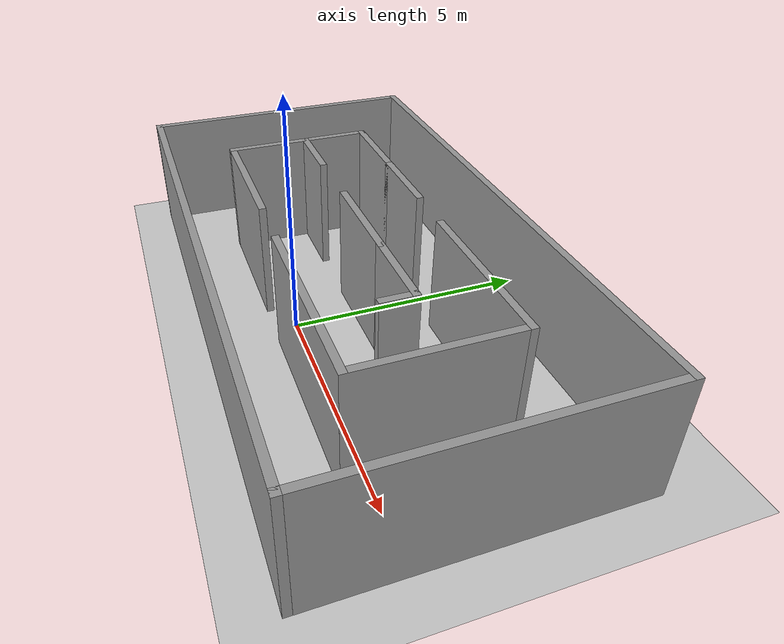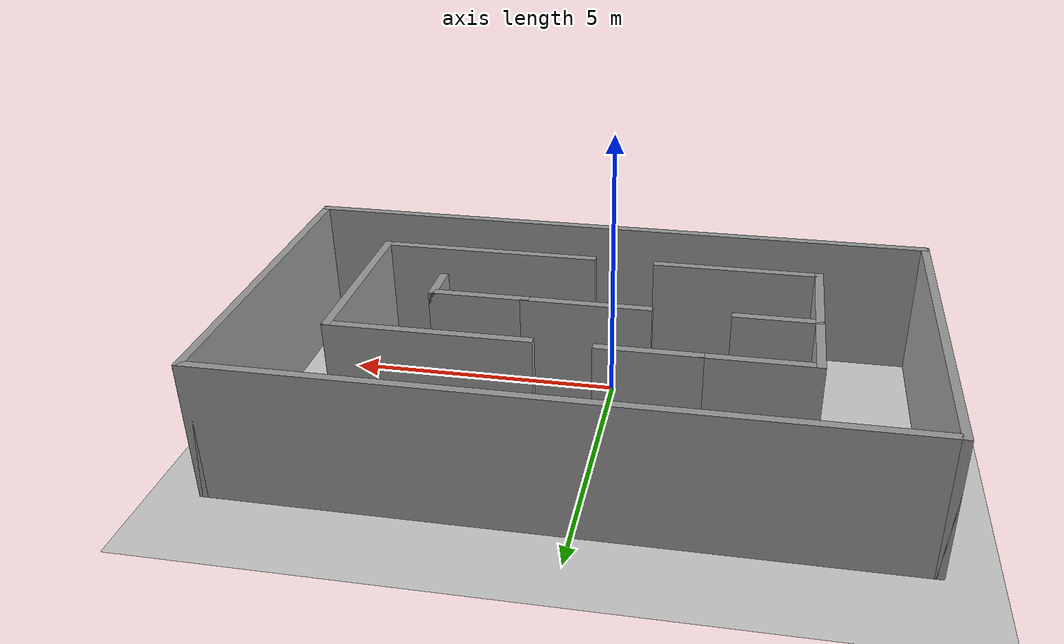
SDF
<sdf version="1.7">
 <world name="default">
  <light name="sun" type="directional">
   <pose>0 0 10 0 -0 0</pose>
   <diffuse>0.8 0.8 0.8 1</diffuse>
   <specular>0.2 0.2 0.2 1</specular>
   <attenuation>
    <range>1000</range>
    <constant>0.9</constant>
    <linear>0.01</linear>
    <quadratic>0.001</quadratic>
   </attenuation>
   <direction>-0.5 0.1 -0.9</direction>
   <spot><inner_angle>0</inner_angle><outer_angle>0</outer_angle><falloff>0</falloff></spot>
  </light>
  <model name="ground_plane">
   <static>1</static>
   <link name="link">
    <collision name="collision">
     <geometry><plane><normal>0 0 1</normal><size>100 100</size></plane></geometry>
     <surface>
      <contact><collide_bitmask>65535</collide_bitmask></contact>
      <friction><ode><mu>100</mu><mu2>50</mu2></ode></friction>
     </surface>
    </collision>
    <visual name="visual">
     <cast_shadows>0</cast_shadows>
     <geometry><plane><normal>0 0 1</normal><size>100 100</size></plane></geometry>
     <material>
      <script><uri>file://media/materials/scripts/gazebo.material</uri><name>Gazebo/Grey</name></script>
     </material>
    </visual>
   </link>
  </model>
  <gravity>0 0 -9.8</gravity>
  <magnetic_field>6e-06 2.3e-05 -4.2e-05</magnetic_field>
  <atmosphere type="adiabatic"/>
  <physics type="ode">
   <max_step_size>0.001</max_step_size>
   <real_time_factor>1</real_time_factor>
   <real_time_update_rate>1000</real_time_update_rate>
  </physics>
  <scene><ambient>0.4 0.4 0.4 1</ambient><background>0.7 0.7 0.7 1</background><shadows>1</shadows></scene>
  <spherical_coordinates>
   <surface_model>EARTH_WGS84</surface_model>
   <latitude_deg>0</latitude_deg>
   <longitude_deg>0</longitude_deg>
   <elevation>0</elevation>
   <heading_deg>0</heading_deg>
  </spherical_coordinates>
  <model name="Untitled2">
   <pose>0.26 1.24 0 0 -0 0</pose>
   <link name="Wall_0">
    <collision name="Wall_0_Collision">
     <geometry><box><size>6.25 0.15 2.5</size></box></geometry>
     <pose>0 0 1.25 0 -0 0</pose>
    </collision>
    <visual name="Wall_0_Visual">
     <pose>0 0 1.25 0 -0 0</pose>
     <geometry><box><size>6.25 0.15 2.5</size></box></geometry>
     <material>
      <script><uri>file://media/materials/scripts/gazebo.material</uri><name>Gazebo/Grey</name></script>
      <ambient>1 1 1 1</ambient>
     </material>
     <meta><layer>0</layer></meta>
    </visual>
    <pose>-5.8 -0 0 0 -0 1.5708</pose>
   </link>
   <link name="Wall_12">
    <collision name="Wall_12_Collision">
     <geometry><box><size>1.5 0.15 2.5</size></box></geometry>
     <pose>0 0 1.25 0 -0 0</pose>
    </collision>
    <visual name="Wall_12_Visual">
     <pose>0 0 1.25 0 -0 0</pose>
     <geometry><box><size>1.5 0.15 2.5</size></box></geometry>
     <material>
      <script><uri>file://media/materials/scripts/gazebo.material</uri><name>Gazebo/Grey</name></script>
      <ambient>1 1 1 1</ambient>
     </material>
     <meta><layer>0</layer></meta>
    </visual>
    <pose>-3.1767 0.078262 0 0 -0 0</pose>
   </link>
   <link name="Wall_14">
    <collision name="Wall_14_Collision">
     <geometry><box><size>3 0.15 2.5</size></box></geometry>
     <pose>0 0 1.25 0 -0 0</pose>
    </collision>
    <visual name="Wall_14_Visual">
     <pose>0 0 1.25 0 -0 0</pose>
     <geometry><box><size>3 0.15 2.5</size></box></geometry>
     <material>
      <script><uri>file://media/materials/scripts/gazebo.material</uri><name>Gazebo/Grey</name></script>
      <ambient>1 1 1 1</ambient>
     </material>
     <meta><layer>0</layer></meta>
    </visual>
    <pose>-2.43426 -1.63043 0 0 -0 0</pose>
   </link>
   <link name="Wall_17">
    <collision name="Wall_17_Collision">
     <geometry><box><size>2.25 0.15 2.5</size></box></geometry>
     <pose>0 0 1.25 0 -0 0</pose>
    </collision>
    <visual name="Wall_17_Visual">
     <pose>0 0 1.25 0 -0 0</pose>
     <geometry><box><size>2.25 0.15 2.5</size></box></geometry>
     <material>
      <script><uri>file://media/materials/scripts/gazebo.material</uri><name>Gazebo/Grey</name></script>
      <ambient>1 1 1 1</ambient>
     </material>
     <meta><layer>0</layer></meta>
    </visual>
    <pose>0.011151 0.093385 0 0 -0 0</pose>
   </link>
   <link name="Wall_19">
    <collision name="Wall_19_Collision">
     <geometry><box><size>4 0.15 2.5</size></box></geometry>
     <pose>0 0 1.25 0 -0 0</pose>
    </collision>
    <visual name="Wall_19_Visual">
     <pose>0 0 1.25 0 -0 0</pose>
     <geometry><box><size>4 0.15 2.5</size></box></geometry>
     <material>
      <script><uri>file://media/materials/scripts/gazebo.material</uri><name>Gazebo/Grey</name></script>
      <ambient>1 1 1 1</ambient>
     </material>
     <meta><layer>0</layer></meta>
    </visual>
    <pose>2.12623 -1.64575 0 0 -0 0</pose>
   </link>
   <link name="Wall_2">
    <collision name="Wall_2_Collision">
     <geometry><box><size>11.75 0.15 2.5</size></box></geometry>
     <pose>0 0 1.25 0 -0 0</pose>
    </collision>
    <visual name="Wall_2_Visual">
     <pose>0 0 1.25 0 -0 0</pose>
     <geometry><box><size>11.75 0.15 2.5</size></box></geometry>
     <material>
      <script><uri>file://media/materials/scripts/gazebo.material</uri><name>Gazebo/Grey</name></script>
      <ambient>1 1 1 1</ambient>
     </material>
     <meta><layer>0</layer></meta>
    </visual>
    <pose>0 3.05 0 0 -0 0</pose>
   </link>
   <link name="Wall_20">
    <collision name="Wall_20_Collision">
     <geometry><box><size>3.25 0.15 2.5</size></box></geometry>
     <pose>0 0 1.25 0 -0 0</pose>
    </collision>
    <visual name="Wall_20_Visual">
     <pose>0 0 1.25 0 -0 0</pose>
     <geometry><box><size>3.25 0.15 2.5</size></box></geometry>
     <material>
      <script><uri>file://media/materials/scripts/gazebo.material</uri><name>Gazebo/Grey</name></script>
      <ambient>1 1 1 1</ambient>
     </material>
     <meta><layer>0</layer></meta>
    </visual>
    <pose>4.05123 -0.095745 0 0 -0 1.5708</pose>
   </link>
   <link name="Wall_21">
    <collision name="Wall_21_Collision">
     <geometry><box><size>3.5 0.15 2.5</size></box></geometry>
     <pose>0 0 1.25 0 -0 0</pose>
    </collision>
    <visual name="Wall_21_Visual">
     <pose>0 0 1.25 0 -0 0</pose>
     <geometry><box><size>3.5 0.15 2.5</size></box></geometry>
     <material>
      <script><uri>file://media/materials/scripts/gazebo.material</uri><name>Gazebo/Grey</name></script>
      <ambient>1 1 1 1</ambient>
     </material>
     <meta><layer>0</layer></meta>
    </visual>
    <pose>2.37623 1.45426 0 0 -0 3.14159</pose>
   </link>
   <link name="Wall_23">
    <collision name="Wall_23_Collision">
     <geometry><box><size>1.75 0.15 2.5</size></box></geometry>
     <pose>0 0 1.25 0 -0 0</pose>
    </collision>
    <visual name="Wall_23_Visual">
     <pose>0 0 1.25 0 -0 0</pose>
     <geometry><box><size>1.75 0.15 2.5</size></box></geometry>
     <material>
      <script><uri>file://media/materials/scripts/gazebo.material</uri><name>Gazebo/Grey</name></script>
      <ambient>1 1 1 1</ambient>
     </material>
     <meta><layer>0</layer></meta>
    </visual>
    <pose>-1.20927 1.46957 0 0 -0 0</pose>
   </link>
   <link name="Wall_25">
    <collision name="Wall_25_Collision">
     <geometry><box><size>1.75 0.15 2.5</size></box></geometry>
     <pose>0 0 1.25 0 -0 0</pose>
    </collision>
    <visual name="Wall_25_Visual">
     <pose>0 0 1.25 0 -0 0</pose>
     <geometry><box><size>1.75 0.15 2.5</size></box></geometry>
     <material>
      <script><uri>file://media/materials/scripts/gazebo.material</uri><name>Gazebo/Grey</name></script>
      <ambient>1 1 1 1</ambient>
     </material>
     <meta><layer>0</layer></meta>
    </visual>
    <pose>1.86115 0.093385 0 0 -0 0</pose>
   </link>
   <link name="Wall_26">
    <collision name="Wall_26_Collision">
     <geometry><box><size>0.75 0.15 2.5</size></box></geometry>
     <pose>0 0 1.25 0 -0 0</pose>
    </collision>
    <visual name="Wall_26_Visual">
     <pose>0 0 1.25 0 -0 0</pose>
     <geometry><box><size>0.75 0.15 2.5</size></box></geometry>
     <material>
      <script><uri>file://media/materials/scripts/gazebo.material</uri><name>Gazebo/Grey</name></script>
      <ambient>1 1 1 1</ambient>
     </material>
     <meta><layer>0</layer></meta>
    </visual>
    <pose>2.66115 -0.206615 0 0 -0 -1.5708</pose>
   </link>
   <link name="Wall_3">
    <collision name="Wall_3_Collision">
     <geometry><box><size>6.25 0.15 2.5</size></box></geometry>
     <pose>0 0 1.25 0 -0 0</pose>
    </collision>
    <visual name="Wall_3_Visual">
     <pose>0 0 1.25 0 -0 0</pose>
     <geometry><box><size>6.25 0.15 2.5</size></box></geometry>
     <material>
      <script><uri>file://media/materials/scripts/gazebo.material</uri><name>Gazebo/Grey</name></script>
      <ambient>1 1 1 1</ambient>
     </material>
     <meta><layer>0</layer></meta>
    </visual>
    <pose>5.8 -0 0 0 -0 -1.5708</pose>
   </link>
   <link name="Wall_4">
    <collision name="Wall_4_Collision">
     <geometry><box><size>11.75 0.15 2.5</size></box></geometry>
     <pose>0 0 1.25 0 -0 0</pose>
    </collision>
    <visual name="Wall_4_Visual">
     <pose>0 0 1.25 0 -0 0</pose>
     <geometry><box><size>11.75 0.15 2.5</size></box></geometry>
     <material>
      <script><uri>file://media/materials/scripts/gazebo.material</uri><name>Gazebo/Grey</name></script>
      <ambient>1 1 1 1</ambient>
     </material>
     <meta><layer>0</layer></meta>
    </visual>
    <pose>0 -3.05 0 0 -0 3.14159</pose>
   </link>
   <link name="Wall_6">
    <collision name="Wall_6_Collision">
     <geometry><box><size>2 0.15 2.5</size></box></geometry>
     <pose>0 0 1.25 0 -0 0</pose>
    </collision>
    <visual name="Wall_6_Visual">
     <pose>0 0 1.25 0 -0 0</pose>
     <geometry><box><size>2 0.15 2.5</size></box></geometry>
     <material>
      <script><uri>file://media/materials/scripts/gazebo.material</uri><name>Gazebo/Grey</name></script>
      <ambient>1 1 1 1</ambient>
     </material>
     <meta><layer>0</layer></meta>
    </visual>
    <pose>-2.93426 1.46957 0 0 -0 0</pose>
   </link>
   <link name="Wall_8">
    <collision name="Wall_8_Collision">
     <geometry><box><size>3.25 0.15 2.5</size></box></geometry>
     <pose>0 0 1.25 0 -0 0</pose>
    </collision>
    <visual name="Wall_8_Visual">
     <pose>0 0 1.25 0 -0 0</pose>
     <geometry><box><size>3.25 0.15 2.5</size></box></geometry>
     <material>
      <script><uri>file://media/materials/scripts/gazebo.material</uri><name>Gazebo/Grey</name></script>
      <ambient>1 1 1 1</ambient>
     </material>
     <meta><layer>0</layer></meta>
    </visual>
    <pose>-3.85927 -0.080434 0 0 -0 -1.5708</pose>
   </link>
   <static>1</static>
  </model>
 </world>
</sdf>
